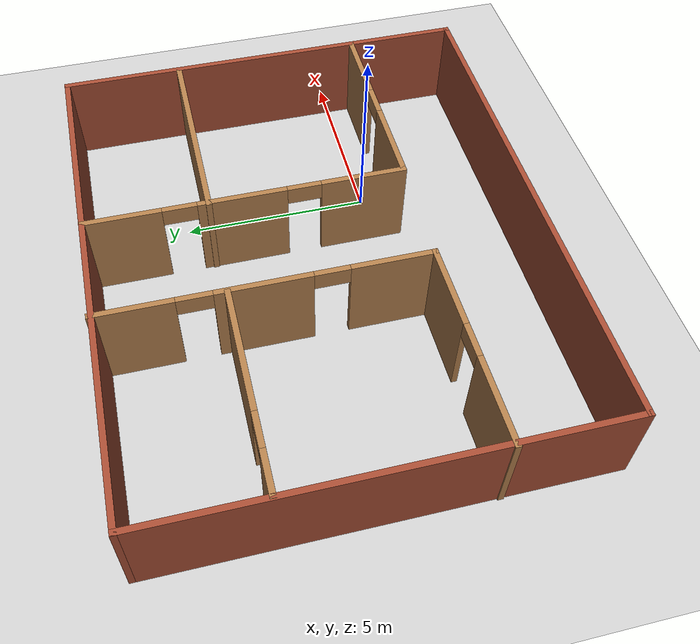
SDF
<sdf version="1.7">
 <world name="default">
  <light name="sun" type="directional">
   <pose>0 0 10 0 -0 0</pose>
   <diffuse>0.8 0.8 0.8 1</diffuse>
   <specular>0.2 0.2 0.2 1</specular>
   <attenuation>
    <range>1000</range>
    <constant>0.9</constant>
    <linear>0.01</linear>
    <quadratic>0.001</quadratic>
   </attenuation>
   <direction>-0.5 0.1 -0.9</direction>
   <spot><inner_angle>0</inner_angle><outer_angle>0</outer_angle><falloff>0</falloff></spot>
  </light>
  <model name="ground_plane">
   <static>1</static>
   <link name="link">
    <collision name="collision">
     <geometry><plane><normal>0 0 1</normal><size>100 100</size></plane></geometry>
     <surface>
      <contact><collide_bitmask>65535</collide_bitmask></contact>
      <friction><ode><mu>100</mu><mu2>50</mu2></ode></friction>
     </surface>
    </collision>
    <visual name="visual">
     <cast_shadows>0</cast_shadows>
     <geometry><plane><normal>0 0 1</normal><size>100 100</size></plane></geometry>
     <material>
      <script><uri>file://media/materials/scripts/gazebo.material</uri><name>Gazebo/Grey</name></script>
     </material>
    </visual>
   </link>
  </model>
  <gravity>0 0 -9.8</gravity>
  <magnetic_field>6e-06 2.3e-05 -4.2e-05</magnetic_field>
  <atmosphere type="adiabatic"/>
  <physics type="ode">
   <max_step_size>0.001</max_step_size>
   <real_time_factor>1</real_time_factor>
   <real_time_update_rate>1000</real_time_update_rate>
  </physics>
  <scene><ambient>0.4 0.4 0.4 1</ambient><background>0.7 0.7 0.7 1</background><shadows>1</shadows></scene>
  <audio><device>default</device></audio>
  <spherical_coordinates>
   <surface_model>EARTH_WGS84</surface_model>
   <latitude_deg>0</latitude_deg>
   <longitude_deg>0</longitude_deg>
   <elevation>0</elevation>
   <heading_deg>0</heading_deg>
  </spherical_coordinates>
  <model name="Untitled">
   <pose>-2.71816 2.00126 0 0 -0 0</pose>
   <link name="Wall_0">
    <collision name="Wall_0_Collision">
     <geometry><box><size>11.5 0.15 2.5</size></box></geometry>
     <pose>0 0 1.25 0 -0 0</pose>
    </collision>
    <visual name="Wall_0_Visual">
     <pose>0 0 1.25 0 -0 0</pose>
     <geometry><box><size>11.5 0.15 2.5</size></box></geometry>
     <material>
      <script><uri>file://media/materials/scripts/gazebo.material</uri><name>Gazebo/Bricks</name></script>
      <ambient>1 1 1 1</ambient>
     </material>
     <meta><layer>0</layer></meta>
    </visual>
    <pose>-6.78216 -0.023906 0 0 -0 -1.5708</pose>
   </link>
   <link name="Wall_1">
    <collision name="Wall_1_Collision">
     <geometry><box><size>13.75 0.15 2.5</size></box></geometry>
     <pose>0 0 1.25 0 -0 0</pose>
    </collision>
    <visual name="Wall_1_Visual">
     <pose>0 0 1.25 0 -0 0</pose>
     <geometry><box><size>13.75 0.15 2.5</size></box></geometry>
     <material>
      <script><uri>file://media/materials/scripts/gazebo.material</uri><name>Gazebo/Bricks</name></script>
      <ambient>1 1 1 1</ambient>
     </material>
     <meta><layer>0</layer></meta>
    </visual>
    <pose>0.017835 -5.69891 0 0 -0 0</pose>
   </link>
   <link name="Wall_15">
    <pose>1.41492 1.46061 0 0 -0 -1.5708</pose>
    <visual name="Wall_15_Visual_0">
     <pose>-3.22038 0 1.25 0 -0 0</pose>
     <geometry><box><size>2.05925 0.15 2.5</size></box></geometry>
     <material>
      <script><uri>file://media/materials/scripts/gazebo.material</uri><name>Gazebo/Wood</name></script>
      <ambient>1 1 1 1</ambient>
     </material>
     <meta><layer>0</layer></meta>
    </visual>
    <collision name="Wall_15_Collision_0">
     <geometry><box><size>2.05925 0.15 2.5</size></box></geometry>
     <pose>-3.22038 0 1.25 0 -0 0</pose>
    </collision>
    <visual name="Wall_15_Visual_1">
     <pose>-0.11947 0 1.25 0 -0 0</pose>
     <geometry><box><size>2.34256 0.15 2.5</size></box></geometry>
     <material>
      <script><uri>file://media/materials/scripts/gazebo.material</uri><name>Gazebo/Wood</name></script>
      <ambient>1 1 1 1</ambient>
     </material>
     <meta><layer>0</layer></meta>
    </visual>
    <collision name="Wall_15_Collision_1">
     <geometry><box><size>2.34256 0.15 2.5</size></box></geometry>
     <pose>-0.11947 0 1.25 0 -0 0</pose>
    </collision>
    <visual name="Wall_15_Visual_2">
     <pose>3.10091 0 1.25 0 -0 0</pose>
     <geometry><box><size>2.29819 0.15 2.5</size></box></geometry>
     <material>
      <script><uri>file://media/materials/scripts/gazebo.material</uri><name>Gazebo/Wood</name></script>
      <ambient>1 1 1 1</ambient>
     </material>
     <meta><layer>0</layer></meta>
    </visual>
    <collision name="Wall_15_Collision_2">
     <geometry><box><size>2.29819 0.15 2.5</size></box></geometry>
     <pose>3.10091 0 1.25 0 -0 0</pose>
    </collision>
    <visual name="Wall_15_Visual_3">
     <pose>-1.74075 0 2.25 0 -0 0</pose>
     <geometry><box><size>0.9 0.15 0.5</size></box></geometry>
     <material>
      <script><uri>file://media/materials/scripts/gazebo.material</uri><name>Gazebo/Wood</name></script>
      <ambient>1 1 1 1</ambient>
     </material>
     <meta><layer>0</layer></meta>
    </visual>
    <collision name="Wall_15_Collision_3">
     <geometry><box><size>0.9 0.15 0.5</size></box></geometry>
     <pose>-1.74075 0 2.25 0 -0 0</pose>
    </collision>
    <visual name="Wall_15_Visual_4">
     <pose>1.50181 0 2.25 0 -0 0</pose>
     <geometry><box><size>0.9 0.15 0.5</size></box></geometry>
     <material>
      <script><uri>file://media/materials/scripts/gazebo.material</uri><name>Gazebo/Wood</name></script>
      <ambient>1 1 1 1</ambient>
     </material>
     <meta><layer>0</layer></meta>
    </visual>
    <collision name="Wall_15_Collision_4">
     <geometry><box><size>0.9 0.15 0.5</size></box></geometry>
     <pose>1.50181 0 2.25 0 -0 0</pose>
    </collision>
   </link>
   <link name="Wall_16">
    <pose>4.08993 -2.71439 0 0 -0 0</pose>
    <visual name="Wall_16_Visual_0">
     <pose>-1.54812 0 1.25 0 -0 0</pose>
     <geometry><box><size>2.40376 0.15 2.5</size></box></geometry>
     <material>
      <script><uri>file://media/materials/scripts/gazebo.material</uri><name>Gazebo/Wood</name></script>
      <ambient>1 1 1 1</ambient>
     </material>
     <meta><layer>0</layer></meta>
    </visual>
    <collision name="Wall_16_Collision_0">
     <geometry><box><size>2.40376 0.15 2.5</size></box></geometry>
     <pose>-1.54812 0 1.25 0 -0 0</pose>
    </collision>
    <visual name="Wall_16_Visual_1">
     <pose>1.65188 0 1.25 0 -0 0</pose>
     <geometry><box><size>2.19624 0.15 2.5</size></box></geometry>
     <material>
      <script><uri>file://media/materials/scripts/gazebo.material</uri><name>Gazebo/Wood</name></script>
      <ambient>1 1 1 1</ambient>
     </material>
     <meta><layer>0</layer></meta>
    </visual>
    <collision name="Wall_16_Collision_1">
     <geometry><box><size>2.19624 0.15 2.5</size></box></geometry>
     <pose>1.65188 0 1.25 0 -0 0</pose>
    </collision>
    <visual name="Wall_16_Visual_2">
     <pose>0.103758 0 2.25 0 -0 0</pose>
     <geometry><box><size>0.9 0.15 0.5</size></box></geometry>
     <material>
      <script><uri>file://media/materials/scripts/gazebo.material</uri><name>Gazebo/Wood</name></script>
      <ambient>1 1 1 1</ambient>
     </material>
     <meta><layer>0</layer></meta>
    </visual>
    <collision name="Wall_16_Collision_2">
     <geometry><box><size>0.9 0.15 0.5</size></box></geometry>
     <pose>0.103758 0 2.25 0 -0 0</pose>
    </collision>
   </link>
   <link name="Wall_18">
    <collision name="Wall_18_Collision">
     <geometry><box><size>5.5 0.15 2.5</size></box></geometry>
     <pose>0 0 1.25 0 -0 0</pose>
    </collision>
    <visual name="Wall_18_Visual">
     <pose>0 0 1.25 0 -0 0</pose>
     <geometry><box><size>5.5 0.15 2.5</size></box></geometry>
     <material>
      <script><uri>file://media/materials/scripts/gazebo.material</uri><name>Gazebo/Wood</name></script>
      <ambient>1 1 1 1</ambient>
     </material>
     <meta><layer>0</layer></meta>
    </visual>
    <pose>4.05933 2.45423 0 0 -0 0</pose>
   </link>
   <link name="Wall_2">
    <collision name="Wall_2_Collision">
     <geometry><box><size>11.5 0.15 2.5</size></box></geometry>
     <pose>0 0 1.25 0 -0 0</pose>
    </collision>
    <visual name="Wall_2_Visual">
     <pose>0 0 1.25 0 -0 0</pose>
     <geometry><box><size>11.5 0.15 2.5</size></box></geometry>
     <material>
      <script><uri>file://media/materials/scripts/gazebo.material</uri><name>Gazebo/Bricks</name></script>
      <ambient>1 1 1 1</ambient>
     </material>
     <meta><layer>0</layer></meta>
    </visual>
    <pose>6.81783 -0.023906 0 0 -0 1.5708</pose>
   </link>
   <link name="Wall_3">
    <collision name="Wall_3_Collision">
     <geometry><box><size>13.75 0.15 2.5</size></box></geometry>
     <pose>0 0 1.25 0 -0 0</pose>
    </collision>
    <visual name="Wall_3_Visual">
     <pose>0 0 1.25 0 -0 0</pose>
     <geometry><box><size>13.75 0.15 2.5</size></box></geometry>
     <material>
      <script><uri>file://media/materials/scripts/gazebo.material</uri><name>Gazebo/Bricks</name></script>
      <ambient>1 1 1 1</ambient>
     </material>
     <meta><layer>0</layer></meta>
    </visual>
    <pose>0.017835 5.65109 0 0 -0 3.14159</pose>
   </link>
   <link name="Wall_5">
    <pose>-4.14376 -2.66868 0 0 -0 0.006579</pose>
    <visual name="Wall_5_Visual_0">
     <pose>-1.59129 0 1.25 0 -0 0</pose>
     <geometry><box><size>2.31472 0.15 2.5</size></box></geometry>
     <material>
      <script><uri>file://media/materials/scripts/gazebo.material</uri><name>Gazebo/Wood</name></script>
      <ambient>1 1 1 1</ambient>
     </material>
     <meta><layer>0</layer></meta>
    </visual>
    <collision name="Wall_5_Collision_0">
     <geometry><box><size>2.31472 0.15 2.5</size></box></geometry>
     <pose>-1.59129 0 1.25 0 -0 0</pose>
    </collision>
    <visual name="Wall_5_Visual_1">
     <pose>1.60736 0 1.25 0 -0 0</pose>
     <geometry><box><size>2.28257 0.15 2.5</size></box></geometry>
     <material>
      <script><uri>file://media/materials/scripts/gazebo.material</uri><name>Gazebo/Wood</name></script>
      <ambient>1 1 1 1</ambient>
     </material>
     <meta><layer>0</layer></meta>
    </visual>
    <collision name="Wall_5_Collision_1">
     <geometry><box><size>2.28257 0.15 2.5</size></box></geometry>
     <pose>1.60736 0 1.25 0 -0 0</pose>
    </collision>
    <visual name="Wall_5_Visual_2">
     <pose>0.016071 0 2.25 0 -0 0</pose>
     <geometry><box><size>0.9 0.15 0.5</size></box></geometry>
     <material>
      <script><uri>file://media/materials/scripts/gazebo.material</uri><name>Gazebo/Wood</name></script>
      <ambient>1 1 1 1</ambient>
     </material>
     <meta><layer>0</layer></meta>
    </visual>
    <collision name="Wall_5_Collision_2">
     <geometry><box><size>0.9 0.15 0.5</size></box></geometry>
     <pose>0.016071 0 2.25 0 -0 0</pose>
    </collision>
   </link>
   <link name="Wall_6">
    <pose>-1.47017 1.52391 0 0 -0 1.5708</pose>
    <visual name="Wall_6_Visual_0">
     <pose>-3.14785 0 1.25 0 -0 0</pose>
     <geometry><box><size>2.2043 0.15 2.5</size></box></geometry>
     <material>
      <script><uri>file://media/materials/scripts/gazebo.material</uri><name>Gazebo/Wood</name></script>
      <ambient>1 1 1 1</ambient>
     </material>
     <meta><layer>0</layer></meta>
    </visual>
    <collision name="Wall_6_Collision_0">
     <geometry><box><size>2.2043 0.15 2.5</size></box></geometry>
     <pose>-3.14785 0 1.25 0 -0 0</pose>
    </collision>
    <visual name="Wall_6_Visual_1">
     <pose>0.071469 0 1.25 0 -0 0</pose>
     <geometry><box><size>2.43433 0.15 2.5</size></box></geometry>
     <material>
      <script><uri>file://media/materials/scripts/gazebo.material</uri><name>Gazebo/Wood</name></script>
      <ambient>1 1 1 1</ambient>
     </material>
     <meta><layer>0</layer></meta>
    </visual>
    <collision name="Wall_6_Collision_1">
     <geometry><box><size>2.43433 0.15 2.5</size></box></geometry>
     <pose>0.071469 0 1.25 0 -0 0</pose>
    </collision>
    <visual name="Wall_6_Visual_2">
     <pose>3.21932 0 1.25 0 -0 0</pose>
     <geometry><box><size>2.06136 0.15 2.5</size></box></geometry>
     <material>
      <script><uri>file://media/materials/scripts/gazebo.material</uri><name>Gazebo/Wood</name></script>
      <ambient>1 1 1 1</ambient>
     </material>
     <meta><layer>0</layer></meta>
    </visual>
    <collision name="Wall_6_Collision_2">
     <geometry><box><size>2.06136 0.15 2.5</size></box></geometry>
     <pose>3.21932 0 1.25 0 -0 0</pose>
    </collision>
    <visual name="Wall_6_Visual_3">
     <pose>-1.5957 0 2.25 0 -0 0</pose>
     <geometry><box><size>0.9 0.15 0.5</size></box></geometry>
     <material>
      <script><uri>file://media/materials/scripts/gazebo.material</uri><name>Gazebo/Wood</name></script>
      <ambient>1 1 1 1</ambient>
     </material>
     <meta><layer>0</layer></meta>
    </visual>
    <collision name="Wall_6_Collision_3">
     <geometry><box><size>0.9 0.15 0.5</size></box></geometry>
     <pose>-1.5957 0 2.25 0 -0 0</pose>
    </collision>
    <visual name="Wall_6_Visual_4">
     <pose>1.73864 0 2.25 0 -0 0</pose>
     <geometry><box><size>0.9 0.15 0.5</size></box></geometry>
     <material>
      <script><uri>file://media/materials/scripts/gazebo.material</uri><name>Gazebo/Wood</name></script>
      <ambient>1 1 1 1</ambient>
     </material>
     <meta><layer>0</layer></meta>
    </visual>
    <collision name="Wall_6_Collision_4">
     <geometry><box><size>0.9 0.15 0.5</size></box></geometry>
     <pose>1.73864 0 2.25 0 -0 0</pose>
    </collision>
   </link>
   <link name="Wall_8">
    <pose>-4.12976 2.47319 0 0 -0 0</pose>
    <visual name="Wall_8_Visual_0">
     <pose>-2.11941 0 1.25 0 -0 0</pose>
     <geometry><box><size>1.14211 0.15 2.5</size></box></geometry>
     <material>
      <script><uri>file://media/materials/scripts/gazebo.material</uri><name>Gazebo/Wood</name></script>
      <ambient>1 1 1 1</ambient>
     </material>
     <meta><layer>0</layer></meta>
    </visual>
    <collision name="Wall_8_Collision_0">
     <geometry><box><size>1.14211 0.15 2.5</size></box></geometry>
     <pose>-2.11941 0 1.25 0 -0 0</pose>
    </collision>
    <visual name="Wall_8_Visual_1">
     <pose>1.02106 0 1.25 0 -0 0</pose>
     <geometry><box><size>3.33882 0.15 2.5</size></box></geometry>
     <material>
      <script><uri>file://media/materials/scripts/gazebo.material</uri><name>Gazebo/Wood</name></script>
      <ambient>1 1 1 1</ambient>
     </material>
     <meta><layer>0</layer></meta>
    </visual>
    <collision name="Wall_8_Collision_1">
     <geometry><box><size>3.33882 0.15 2.5</size></box></geometry>
     <pose>1.02106 0 1.25 0 -0 0</pose>
    </collision>
    <visual name="Wall_8_Visual_2">
     <pose>-1.09835 0 2.25 0 -0 0</pose>
     <geometry><box><size>0.9 0.15 0.5</size></box></geometry>
     <material>
      <script><uri>file://media/materials/scripts/gazebo.material</uri><name>Gazebo/Wood</name></script>
      <ambient>1 1 1 1</ambient>
     </material>
     <meta><layer>0</layer></meta>
    </visual>
    <collision name="Wall_8_Collision_2">
     <geometry><box><size>0.9 0.15 0.5</size></box></geometry>
     <pose>-1.09835 0 2.25 0 -0 0</pose>
    </collision>
   </link>
   <static>1</static>
  </model>
 </world>
</sdf>
